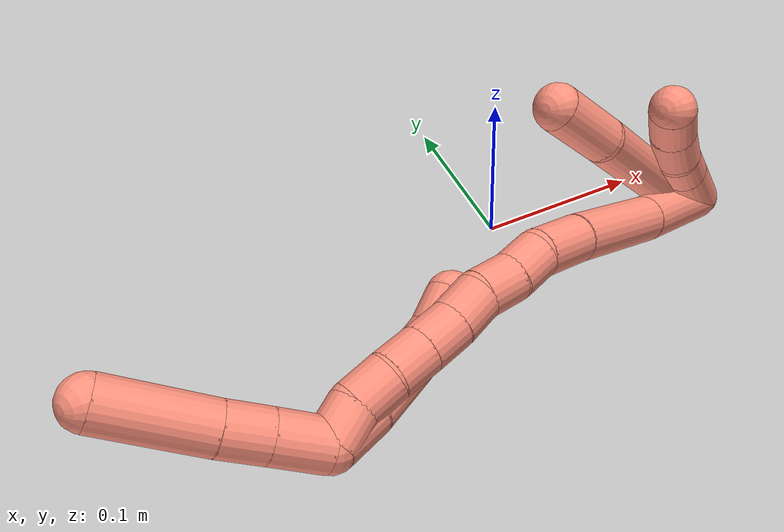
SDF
<sdf version="1.7">
 <world name="default">
  <model name="16">
   <static>0</static>
   <link name="16">
    <collision name="collision-cylinder-e_1_2_8">
     <pose>0.003682 0.006111 0.014849 -0.39041 0.225384 -0.044746</pose>
     <geometry><cylinder><radius>0.0125</radius><length>0.032947</length></cylinder></geometry>
     <surface>
      <friction><ode><mu>1.16</mu><mu2>1.16</mu2><slip1>0</slip1><slip2>0</slip2></ode></friction>
      <contact><ode><kp>1e+06</kp><kd>1</kd><max_vel>0</max_vel><min_depth>0.001</min_depth></ode></contact>
     </surface>
    </collision>
    <visual name="visual-cylinder-e_1_2_8">
     <pose>0.003682 0.006111 0.014849 -0.39041 0.225384 -0.044746</pose>
     <geometry><cylinder><radius>0.0125</radius><length>0.032947</length></cylinder></geometry>
     <material><ambient>1 0.576471 0.494118 1</ambient></material>
    </visual>
    <collision name="collision-cylinder-e_2_8_9">
     <pose>0.024085 0.020276 0.065279 -0.222619 0.429788 -0.048782</pose>
     <geometry><cylinder><radius>0.0125</radius><length>0.080262</length></cylinder></geometry>
     <surface>
      <friction><ode><mu>1.16</mu><mu2>1.16</mu2><slip1>0</slip1><slip2>0</slip2></ode></friction>
      <contact><ode><kp>1e+06</kp><kd>1</kd><max_vel>0</max_vel><min_depth>0.001</min_depth></ode></contact>
     </surface>
    </collision>
    <visual name="visual-cylinder-e_2_8_9">
     <pose>0.024085 0.020276 0.065279 -0.222619 0.429788 -0.048782</pose>
     <geometry><cylinder><radius>0.0125</radius><length>0.080262</length></cylinder></geometry>
     <material><ambient>1 0.576471 0.494118 1</ambient></material>
    </visual>
    <collision name="collision-cylinder-e_3_9_6">
     <pose>0.04749 0.036364 0.115998 -0.487899 0.37184 -0.093567</pose>
     <geometry><cylinder><radius>0.0125</radius><length>0.036791</length></cylinder></geometry>
     <surface>
      <friction><ode><mu>1.16</mu><mu2>1.16</mu2><slip1>0</slip1><slip2>0</slip2></ode></friction>
      <contact><ode><kp>1e+06</kp><kd>1</kd><max_vel>0</max_vel><min_depth>0.001</min_depth></ode></contact>
     </surface>
    </collision>
    <visual name="visual-cylinder-e_3_9_6">
     <pose>0.04749 0.036364 0.115998 -0.487899 0.37184 -0.093567</pose>
     <geometry><cylinder><radius>0.0125</radius><length>0.036791</length></cylinder></geometry>
     <material><ambient>1 0.576471 0.494118 1</ambient></material>
    </visual>
    <collision name="collision-cylinder-e_1_2_10">
     <pose>0.011391 0.002242 0.015737 -0.141518 0.621765 -0.045538</pose>
     <geometry><cylinder><radius>0.0125</radius><length>0.039112</length></cylinder></geometry>
     <surface>
      <friction><ode><mu>1.16</mu><mu2>1.16</mu2><slip1>0</slip1><slip2>0</slip2></ode></friction>
      <contact><ode><kp>1e+06</kp><kd>1</kd><max_vel>0</max_vel><min_depth>0.001</min_depth></ode></contact>
     </surface>
    </collision>
    <visual name="visual-cylinder-e_1_2_10">
     <pose>0.011391 0.002242 0.015737 -0.141518 0.621765 -0.045538</pose>
     <geometry><cylinder><radius>0.0125</radius><length>0.039112</length></cylinder></geometry>
     <material><ambient>1 0.576471 0.494118 1</ambient></material>
    </visual>
    <collision name="collision-cylinder-e_2_10_11">
     <pose>0.028617 0.005628 0.039544 -0.140765 0.621372 -0.045264</pose>
     <geometry><cylinder><radius>0.0125</radius><length>0.020049</length></cylinder></geometry>
     <surface>
      <friction><ode><mu>1.16</mu><mu2>1.16</mu2><slip1>0</slip1><slip2>0</slip2></ode></friction>
      <contact><ode><kp>1e+06</kp><kd>1</kd><max_vel>0</max_vel><min_depth>0.001</min_depth></ode></contact>
     </surface>
    </collision>
    <visual name="visual-cylinder-e_2_10_11">
     <pose>0.028617 0.005628 0.039544 -0.140765 0.621372 -0.045264</pose>
     <geometry><cylinder><radius>0.0125</radius><length>0.020049</length></cylinder></geometry>
     <material><ambient>1 0.576471 0.494118 1</ambient></material>
    </visual>
    <collision name="collision-cylinder-e_3_11_12">
     <pose>0.041784 0.008912 0.054114 -0.318135 0.819772 -0.139181</pose>
     <geometry><cylinder><radius>0.0125</radius><length>0.020057</length></cylinder></geometry>
     <surface>
      <friction><ode><mu>1.16</mu><mu2>1.16</mu2><slip1>0</slip1><slip2>0</slip2></ode></friction>
      <contact><ode><kp>1e+06</kp><kd>1</kd><max_vel>0</max_vel><min_depth>0.001</min_depth></ode></contact>
     </surface>
    </collision>
    <visual name="visual-cylinder-e_3_11_12">
     <pose>0.041784 0.008912 0.054114 -0.318135 0.819772 -0.139181</pose>
     <geometry><cylinder><radius>0.0125</radius><length>0.020057</length></cylinder></geometry>
     <material><ambient>1 0.576471 0.494118 1</ambient></material>
    </visual>
    <collision name="collision-cylinder-e_4_12_5">
     <pose>0.057069 0.012022 0.067229 -0.145531 0.871871 -0.067886</pose>
     <geometry><cylinder><radius>0.0125</radius><length>0.020782</length></cylinder></geometry>
     <surface>
      <friction><ode><mu>1.16</mu><mu2>1.16</mu2><slip1>0</slip1><slip2>0</slip2></ode></friction>
      <contact><ode><kp>1e+06</kp><kd>1</kd><max_vel>0</max_vel><min_depth>0.001</min_depth></ode></contact>
     </surface>
    </collision>
    <visual name="visual-cylinder-e_4_12_5">
     <pose>0.057069 0.012022 0.067229 -0.145531 0.871871 -0.067886</pose>
     <geometry><cylinder><radius>0.0125</radius><length>0.020782</length></cylinder></geometry>
     <material><ambient>1 0.576471 0.494118 1</ambient></material>
    </visual>
    <collision name="collision-cylinder-e_1_2_13">
     <pose>-0.000658 0.000427 0.03015 -0.014162 -0.021816 0.000154</pose>
     <geometry><cylinder><radius>0.0125</radius><length>0.060321</length></cylinder></geometry>
     <surface>
      <friction><ode><mu>1.16</mu><mu2>1.16</mu2><slip1>0</slip1><slip2>0</slip2></ode></friction>
      <contact><ode><kp>1e+06</kp><kd>1</kd><max_vel>0</max_vel><min_depth>0.001</min_depth></ode></contact>
     </surface>
    </collision>
    <visual name="visual-cylinder-e_1_2_13">
     <pose>-0.000658 0.000427 0.03015 -0.014162 -0.021816 0.000154</pose>
     <geometry><cylinder><radius>0.0125</radius><length>0.060321</length></cylinder></geometry>
     <material><ambient>1 0.576471 0.494118 1</ambient></material>
    </visual>
    <collision name="collision-cylinder-e_2_13_14">
     <pose>-0.000382 0.002933 0.093383 -0.06277 0.028171 -0.000885</pose>
     <geometry><cylinder><radius>0.0125</radius><length>0.066322</length></cylinder></geometry>
     <surface>
      <friction><ode><mu>1.16</mu><mu2>1.16</mu2><slip1>0</slip1><slip2>0</slip2></ode></friction>
      <contact><ode><kp>1e+06</kp><kd>1</kd><max_vel>0</max_vel><min_depth>0.001</min_depth></ode></contact>
     </surface>
    </collision>
    <visual name="visual-cylinder-e_2_13_14">
     <pose>-0.000382 0.002933 0.093383 -0.06277 0.028171 -0.000885</pose>
     <geometry><cylinder><radius>0.0125</radius><length>0.066322</length></cylinder></geometry>
     <material><ambient>1 0.576471 0.494118 1</ambient></material>
    </visual>
    <collision name="collision-cylinder-e_3_14_15">
     <pose>-0.000285 0.005776 0.142174 -0.048545 -0.053179 0.001291</pose>
     <geometry><cylinder><radius>0.0125</radius><length>0.031498</length></cylinder></geometry>
     <surface>
      <friction><ode><mu>1.16</mu><mu2>1.16</mu2><slip1>0</slip1><slip2>0</slip2></ode></friction>
      <contact><ode><kp>1e+06</kp><kd>1</kd><max_vel>0</max_vel><min_depth>0.001</min_depth></ode></contact>
     </surface>
    </collision>
    <visual name="visual-cylinder-e_3_14_15">
     <pose>-0.000285 0.005776 0.142174 -0.048545 -0.053179 0.001291</pose>
     <geometry><cylinder><radius>0.0125</radius><length>0.031498</length></cylinder></geometry>
     <material><ambient>1 0.576471 0.494118 1</ambient></material>
    </visual>
    <collision name="collision-cylinder-e_4_15_16">
     <pose>-0.004771 0.005611 0.167261 0.098574 -0.369383 -0.01843</pose>
     <geometry><cylinder><radius>0.0125</radius><length>0.020213</length></cylinder></geometry>
     <surface>
      <friction><ode><mu>1.16</mu><mu2>1.16</mu2><slip1>0</slip1><slip2>0</slip2></ode></friction>
      <contact><ode><kp>1e+06</kp><kd>1</kd><max_vel>0</max_vel><min_depth>0.001</min_depth></ode></contact>
     </surface>
    </collision>
    <visual name="visual-cylinder-e_4_15_16">
     <pose>-0.004771 0.005611 0.167261 0.098574 -0.369383 -0.01843</pose>
     <geometry><cylinder><radius>0.0125</radius><length>0.020213</length></cylinder></geometry>
     <material><ambient>1 0.576471 0.494118 1</ambient></material>
    </visual>
    <collision name="collision-cylinder-e_5_16_17">
     <pose>-0.011285 0.005447 0.186768 -0.075178 -0.275001 0.010407</pose>
     <geometry><cylinder><radius>0.0125</radius><length>0.021106</length></cylinder></geometry>
     <surface>
      <friction><ode><mu>1.16</mu><mu2>1.16</mu2><slip1>0</slip1><slip2>0</slip2></ode></friction>
      <contact><ode><kp>1e+06</kp><kd>1</kd><max_vel>0</max_vel><min_depth>0.001</min_depth></ode></contact>
     </surface>
    </collision>
    <visual name="visual-cylinder-e_5_16_17">
     <pose>-0.011285 0.005447 0.186768 -0.075178 -0.275001 0.010407</pose>
     <geometry><cylinder><radius>0.0125</radius><length>0.021106</length></cylinder></geometry>
     <material><ambient>1 0.576471 0.494118 1</ambient></material>
    </visual>
    <collision name="collision-cylinder-e_6_17_18">
     <pose>-0.018626 0.004728 0.205788 0.165127 -0.460757 -0.038813</pose>
     <geometry><cylinder><radius>0.0125</radius><length>0.020129</length></cylinder></geometry>
     <surface>
      <friction><ode><mu>1.16</mu><mu2>1.16</mu2><slip1>0</slip1><slip2>0</slip2></ode></friction>
      <contact><ode><kp>1e+06</kp><kd>1</kd><max_vel>0</max_vel><min_depth>0.001</min_depth></ode></contact>
     </surface>
    </collision>
    <visual name="visual-cylinder-e_6_17_18">
     <pose>-0.018626 0.004728 0.205788 0.165127 -0.460757 -0.038813</pose>
     <geometry><cylinder><radius>0.0125</radius><length>0.020129</length></cylinder></geometry>
     <material><ambient>1 0.576471 0.494118 1</ambient></material>
    </visual>
    <collision name="collision-cylinder-e_7_18_19">
     <pose>-0.026913 0.002692 0.224081 0.058849 -0.384583 -0.011461</pose>
     <geometry><cylinder><radius>0.0125</radius><length>0.020319</length></cylinder></geometry>
     <surface>
      <friction><ode><mu>1.16</mu><mu2>1.16</mu2><slip1>0</slip1><slip2>0</slip2></ode></friction>
      <contact><ode><kp>1e+06</kp><kd>1</kd><max_vel>0</max_vel><min_depth>0.001</min_depth></ode></contact>
     </surface>
    </collision>
    <visual name="visual-cylinder-e_7_18_19">
     <pose>-0.026913 0.002692 0.224081 0.058849 -0.384583 -0.011461</pose>
     <geometry><cylinder><radius>0.0125</radius><length>0.020319</length></cylinder></geometry>
     <material><ambient>1 0.576471 0.494118 1</ambient></material>
    </visual>
    <collision name="collision-cylinder-e_8_19_20">
     <pose>-0.03449 0.001762 0.242772 0.040413 -0.384856 -0.007875</pose>
     <geometry><cylinder><radius>0.0125</radius><length>0.020062</length></cylinder></geometry>
     <surface>
      <friction><ode><mu>1.16</mu><mu2>1.16</mu2><slip1>0</slip1><slip2>0</slip2></ode></friction>
      <contact><ode><kp>1e+06</kp><kd>1</kd><max_vel>0</max_vel><min_depth>0.001</min_depth></ode></contact>
     </surface>
    </collision>
    <visual name="visual-cylinder-e_8_19_20">
     <pose>-0.03449 0.001762 0.242772 0.040413 -0.384856 -0.007875</pose>
     <geometry><cylinder><radius>0.0125</radius><length>0.020062</length></cylinder></geometry>
     <material><ambient>1 0.576471 0.494118 1</ambient></material>
    </visual>
    <collision name="collision-cylinder-e_9_20_21">
     <pose>-0.043441 0.001317 0.260613 0.008197 -0.545062 -0.002291</pose>
     <geometry><cylinder><radius>0.0125</radius><length>0.020002</length></cylinder></geometry>
     <surface>
      <friction><ode><mu>1.16</mu><mu2>1.16</mu2><slip1>0</slip1><slip2>0</slip2></ode></friction>
      <contact><ode><kp>1e+06</kp><kd>1</kd><max_vel>0</max_vel><min_depth>0.001</min_depth></ode></contact>
     </surface>
    </collision>
    <visual name="visual-cylinder-e_9_20_21">
     <pose>-0.043441 0.001317 0.260613 0.008197 -0.545062 -0.002291</pose>
     <geometry><cylinder><radius>0.0125</radius><length>0.020002</length></cylinder></geometry>
     <material><ambient>1 0.576471 0.494118 1</ambient></material>
    </visual>
    <collision name="collision-cylinder-e_10_21_1">
     <pose>-0.054228 -0.001813 0.27688 0.377541 -0.5937 -0.116744</pose>
     <geometry><cylinder><radius>0.0125</radius><length>0.020029</length></cylinder></geometry>
     <surface>
      <friction><ode><mu>1.16</mu><mu2>1.16</mu2><slip1>0</slip1><slip2>0</slip2></ode></friction>
      <contact><ode><kp>1e+06</kp><kd>1</kd><max_vel>0</max_vel><min_depth>0.001</min_depth></ode></contact>
     </surface>
    </collision>
    <visual name="visual-cylinder-e_10_21_1">
     <pose>-0.054228 -0.001813 0.27688 0.377541 -0.5937 -0.116744</pose>
     <geometry><cylinder><radius>0.0125</radius><length>0.020029</length></cylinder></geometry>
     <material><ambient>1 0.576471 0.494118 1</ambient></material>
    </visual>
    <collision name="collision-cylinder-e_1_1_22">
     <pose>-0.059323 0.003321 0.29513 -0.661121 0.038003 -0.013042</pose>
     <geometry><cylinder><radius>0.0125</radius><length>0.026709</length></cylinder></geometry>
     <surface>
      <friction><ode><mu>1.16</mu><mu2>1.16</mu2><slip1>0</slip1><slip2>0</slip2></ode></friction>
      <contact><ode><kp>1e+06</kp><kd>1</kd><max_vel>0</max_vel><min_depth>0.001</min_depth></ode></contact>
     </surface>
    </collision>
    <visual name="visual-cylinder-e_1_1_22">
     <pose>-0.059323 0.003321 0.29513 -0.661121 0.038003 -0.013042</pose>
     <geometry><cylinder><radius>0.0125</radius><length>0.026709</length></cylinder></geometry>
     <material><ambient>1 0.576471 0.494118 1</ambient></material>
    </visual>
    <collision name="collision-cylinder-e_2_22_23">
     <pose>-0.058355 0.018051 0.314312 -0.647141 0.042506 -0.014257</pose>
     <geometry><cylinder><radius>0.0125</radius><length>0.021703</length></cylinder></geometry>
     <surface>
      <friction><ode><mu>1.16</mu><mu2>1.16</mu2><slip1>0</slip1><slip2>0</slip2></ode></friction>
      <contact><ode><kp>1e+06</kp><kd>1</kd><max_vel>0</max_vel><min_depth>0.001</min_depth></ode></contact>
     </surface>
    </collision>
    <visual name="visual-cylinder-e_2_22_23">
     <pose>-0.058355 0.018051 0.314312 -0.647141 0.042506 -0.014257</pose>
     <geometry><cylinder><radius>0.0125</radius><length>0.021703</length></cylinder></geometry>
     <material><ambient>1 0.576471 0.494118 1</ambient></material>
    </visual>
    <collision name="collision-cylinder-e_3_23_4">
     <pose>-0.056173 0.040911 0.342859 -0.687052 0.066776 -0.023894</pose>
     <geometry><cylinder><radius>0.0125</radius><length>0.051588</length></cylinder></geometry>
     <surface>
      <friction><ode><mu>1.16</mu><mu2>1.16</mu2><slip1>0</slip1><slip2>0</slip2></ode></friction>
      <contact><ode><kp>1e+06</kp><kd>1</kd><max_vel>0</max_vel><min_depth>0.001</min_depth></ode></contact>
     </surface>
    </collision>
    <visual name="visual-cylinder-e_3_23_4">
     <pose>-0.056173 0.040911 0.342859 -0.687052 0.066776 -0.023894</pose>
     <geometry><cylinder><radius>0.0125</radius><length>0.051588</length></cylinder></geometry>
     <material><ambient>1 0.576471 0.494118 1</ambient></material>
    </visual>
    <collision name="collision-cylinder-e_1_1_24">
     <pose>-0.057388 -0.00288 0.272203 -2.98211 0.192216 -1.75733</pose>
     <geometry><cylinder><radius>0.0125</radius><length>0.025576</length></cylinder></geometry>
     <surface>
      <friction><ode><mu>1.16</mu><mu2>1.16</mu2><slip1>0</slip1><slip2>0</slip2></ode></friction>
      <contact><ode><kp>1e+06</kp><kd>1</kd><max_vel>0</max_vel><min_depth>0.001</min_depth></ode></contact>
     </surface>
    </collision>
    <visual name="visual-cylinder-e_1_1_24">
     <pose>-0.057388 -0.00288 0.272203 -2.98211 0.192216 -1.75733</pose>
     <geometry><cylinder><radius>0.0125</radius><length>0.025576</length></cylinder></geometry>
     <material><ambient>1 0.576471 0.494118 1</ambient></material>
    </visual>
    <collision name="collision-cylinder-e_2_24_25">
     <pose>-0.051392 0.00341 0.243822 -2.87907 0.211397 -1.3539</pose>
     <geometry><cylinder><radius>0.0125</radius><length>0.033866</length></cylinder></geometry>
     <surface>
      <friction><ode><mu>1.16</mu><mu2>1.16</mu2><slip1>0</slip1><slip2>0</slip2></ode></friction>
      <contact><ode><kp>1e+06</kp><kd>1</kd><max_vel>0</max_vel><min_depth>0.001</min_depth></ode></contact>
     </surface>
    </collision>
    <visual name="visual-cylinder-e_2_24_25">
     <pose>-0.051392 0.00341 0.243822 -2.87907 0.211397 -1.3539</pose>
     <geometry><cylinder><radius>0.0125</radius><length>0.033866</length></cylinder></geometry>
     <material><ambient>1 0.576471 0.494118 1</ambient></material>
    </visual>
    <collision name="collision-cylinder-e_3_25_26">
     <pose>-0.042595 0.009571 0.21929 -2.92671 0.540177 -2.3986</pose>
     <geometry><cylinder><radius>0.0125</radius><length>0.020392</length></cylinder></geometry>
     <surface>
      <friction><ode><mu>1.16</mu><mu2>1.16</mu2><slip1>0</slip1><slip2>0</slip2></ode></friction>
      <contact><ode><kp>1e+06</kp><kd>1</kd><max_vel>0</max_vel><min_depth>0.001</min_depth></ode></contact>
     </surface>
    </collision>
    <visual name="visual-cylinder-e_3_25_26">
     <pose>-0.042595 0.009571 0.21929 -2.92671 0.540177 -2.3986</pose>
     <geometry><cylinder><radius>0.0125</radius><length>0.020392</length></cylinder></geometry>
     <material><ambient>1 0.576471 0.494118 1</ambient></material>
    </visual>
    <collision name="collision-cylinder-e_4_26_3">
     <pose>-0.031806 0.015365 0.203298 -2.65619 0.582405 -1.76077</pose>
     <geometry><cylinder><radius>0.0125</radius><length>0.020167</length></cylinder></geometry>
     <surface>
      <friction><ode><mu>1.16</mu><mu2>1.16</mu2><slip1>0</slip1><slip2>0</slip2></ode></friction>
      <contact><ode><kp>1e+06</kp><kd>1</kd><max_vel>0</max_vel><min_depth>0.001</min_depth></ode></contact>
     </surface>
    </collision>
    <visual name="visual-cylinder-e_4_26_3">
     <pose>-0.031806 0.015365 0.203298 -2.65619 0.582405 -1.76077</pose>
     <geometry><cylinder><radius>0.0125</radius><length>0.020167</length></cylinder></geometry>
     <material><ambient>1 0.576471 0.494118 1</ambient></material>
    </visual>
    <collision name="collision-sphere-3">
     <pose>-0.026259 0.019294 0.19585 0 -0 0</pose>
     <geometry><sphere><radius>0.0125</radius></sphere></geometry>
     <surface>
      <friction><ode><mu>1.16</mu><mu2>1.16</mu2><slip1>0</slip1><slip2>0</slip2></ode></friction>
      <contact><ode><kp>1e+06</kp><kd>1</kd><max_vel>0</max_vel><min_depth>0.001</min_depth></ode></contact>
     </surface>
    </collision>
    <visual name="visual-sphere-3">
     <pose>-0.026259 0.019294 0.19585 0 -0 0</pose>
     <geometry><sphere><radius>0.0125</radius></sphere></geometry>
     <material><ambient>1 0.576471 0.494118 1</ambient></material>
    </visual>
    <collision name="collision-sphere-26">
     <pose>-0.037352 0.011436 0.210747 0 -0 0</pose>
     <geometry><sphere><radius>0.0125</radius></sphere></geometry>
     <surface>
      <friction><ode><mu>1.16</mu><mu2>1.16</mu2><slip1>0</slip1><slip2>0</slip2></ode></friction>
      <contact><ode><kp>1e+06</kp><kd>1</kd><max_vel>0</max_vel><min_depth>0.001</min_depth></ode></contact>
     </surface>
    </collision>
    <visual name="visual-sphere-26">
     <pose>-0.037352 0.011436 0.210747 0 -0 0</pose>
     <geometry><sphere><radius>0.0125</radius></sphere></geometry>
     <material><ambient>1 0.576471 0.494118 1</ambient></material>
    </visual>
    <collision name="collision-sphere-25">
     <pose>-0.047839 0.007707 0.227833 0 -0 0</pose>
     <geometry><sphere><radius>0.0125</radius></sphere></geometry>
     <surface>
      <friction><ode><mu>1.16</mu><mu2>1.16</mu2><slip1>0</slip1><slip2>0</slip2></ode></friction>
      <contact><ode><kp>1e+06</kp><kd>1</kd><max_vel>0</max_vel><min_depth>0.001</min_depth></ode></contact>
     </surface>
    </collision>
    <visual name="visual-sphere-25">
     <pose>-0.047839 0.007707 0.227833 0 -0 0</pose>
     <geometry><sphere><radius>0.0125</radius></sphere></geometry>
     <material><ambient>1 0.576471 0.494118 1</ambient></material>
    </visual>
    <collision name="collision-sphere-24">
     <pose>-0.054945 -0.000886 0.25981 0 -0 0</pose>
     <geometry><sphere><radius>0.0125</radius></sphere></geometry>
     <surface>
      <friction><ode><mu>1.16</mu><mu2>1.16</mu2><slip1>0</slip1><slip2>0</slip2></ode></friction>
      <contact><ode><kp>1e+06</kp><kd>1</kd><max_vel>0</max_vel><min_depth>0.001</min_depth></ode></contact>
     </surface>
    </collision>
    <visual name="visual-sphere-24">
     <pose>-0.054945 -0.000886 0.25981 0 -0 0</pose>
     <geometry><sphere><radius>0.0125</radius></sphere></geometry>
     <material><ambient>1 0.576471 0.494118 1</ambient></material>
    </visual>
    <collision name="collision-sphere-4">
     <pose>-0.054451 0.057235 0.362757 0 -0 0</pose>
     <geometry><sphere><radius>0.0125</radius></sphere></geometry>
     <surface>
      <friction><ode><mu>1.16</mu><mu2>1.16</mu2><slip1>0</slip1><slip2>0</slip2></ode></friction>
      <contact><ode><kp>1e+06</kp><kd>1</kd><max_vel>0</max_vel><min_depth>0.001</min_depth></ode></contact>
     </surface>
    </collision>
    <visual name="visual-sphere-4">
     <pose>-0.054451 0.057235 0.362757 0 -0 0</pose>
     <geometry><sphere><radius>0.0125</radius></sphere></geometry>
     <material><ambient>1 0.576471 0.494118 1</ambient></material>
    </visual>
    <collision name="collision-sphere-23">
     <pose>-0.057894 0.024587 0.322962 0 -0 0</pose>
     <geometry><sphere><radius>0.0125</radius></sphere></geometry>
     <surface>
      <friction><ode><mu>1.16</mu><mu2>1.16</mu2><slip1>0</slip1><slip2>0</slip2></ode></friction>
      <contact><ode><kp>1e+06</kp><kd>1</kd><max_vel>0</max_vel><min_depth>0.001</min_depth></ode></contact>
     </surface>
    </collision>
    <visual name="visual-sphere-23">
     <pose>-0.057894 0.024587 0.322962 0 -0 0</pose>
     <geometry><sphere><radius>0.0125</radius></sphere></geometry>
     <material><ambient>1 0.576471 0.494118 1</ambient></material>
    </visual>
    <collision name="collision-sphere-22">
     <pose>-0.058816 0.011514 0.305663 0 -0 0</pose>
     <geometry><sphere><radius>0.0125</radius></sphere></geometry>
     <surface>
      <friction><ode><mu>1.16</mu><mu2>1.16</mu2><slip1>0</slip1><slip2>0</slip2></ode></friction>
      <contact><ode><kp>1e+06</kp><kd>1</kd><max_vel>0</max_vel><min_depth>0.001</min_depth></ode></contact>
     </surface>
    </collision>
    <visual name="visual-sphere-22">
     <pose>-0.058816 0.011514 0.305663 0 -0 0</pose>
     <geometry><sphere><radius>0.0125</radius></sphere></geometry>
     <material><ambient>1 0.576471 0.494118 1</ambient></material>
    </visual>
    <collision name="collision-sphere-1">
     <pose>-0.059831 -0.004873 0.284597 0 -0 0</pose>
     <geometry><sphere><radius>0.0125</radius></sphere></geometry>
     <surface>
      <friction><ode><mu>1.16</mu><mu2>1.16</mu2><slip1>0</slip1><slip2>0</slip2></ode></friction>
      <contact><ode><kp>1e+06</kp><kd>1</kd><max_vel>0</max_vel><min_depth>0.001</min_depth></ode></contact>
     </surface>
    </collision>
    <visual name="visual-sphere-1">
     <pose>-0.059831 -0.004873 0.284597 0 -0 0</pose>
     <geometry><sphere><radius>0.0125</radius></sphere></geometry>
     <material><ambient>1 0.576471 0.494118 1</ambient></material>
    </visual>
    <collision name="collision-sphere-21">
     <pose>-0.048626 0.001247 0.269164 0 -0 0</pose>
     <geometry><sphere><radius>0.0125</radius></sphere></geometry>
     <surface>
      <friction><ode><mu>1.16</mu><mu2>1.16</mu2><slip1>0</slip1><slip2>0</slip2></ode></friction>
      <contact><ode><kp>1e+06</kp><kd>1</kd><max_vel>0</max_vel><min_depth>0.001</min_depth></ode></contact>
     </surface>
    </collision>
    <visual name="visual-sphere-21">
     <pose>-0.048626 0.001247 0.269164 0 -0 0</pose>
     <geometry><sphere><radius>0.0125</radius></sphere></geometry>
     <material><ambient>1 0.576471 0.494118 1</ambient></material>
    </visual>
    <collision name="collision-sphere-11">
     <pose>0.034453 0.006771 0.047614 0 -0 0</pose>
     <geometry><sphere><radius>0.0125</radius></sphere></geometry>
     <surface>
      <friction><ode><mu>1.16</mu><mu2>1.16</mu2><slip1>0</slip1><slip2>0</slip2></ode></friction>
      <contact><ode><kp>1e+06</kp><kd>1</kd><max_vel>0</max_vel><min_depth>0.001</min_depth></ode></contact>
     </surface>
    </collision>
    <visual name="visual-sphere-11">
     <pose>0.034453 0.006771 0.047614 0 -0 0</pose>
     <geometry><sphere><radius>0.0125</radius></sphere></geometry>
     <material><ambient>1 0.576471 0.494118 1</ambient></material>
    </visual>
    <collision name="collision-sphere-10">
     <pose>0.022781 0.004484 0.031474 0 -0 0</pose>
     <geometry><sphere><radius>0.0125</radius></sphere></geometry>
     <surface>
      <friction><ode><mu>1.16</mu><mu2>1.16</mu2><slip1>0</slip1><slip2>0</slip2></ode></friction>
      <contact><ode><kp>1e+06</kp><kd>1</kd><max_vel>0</max_vel><min_depth>0.001</min_depth></ode></contact>
     </surface>
    </collision>
    <visual name="visual-sphere-10">
     <pose>0.022781 0.004484 0.031474 0 -0 0</pose>
     <geometry><sphere><radius>0.0125</radius></sphere></geometry>
     <material><ambient>1 0.576471 0.494118 1</ambient></material>
    </visual>
    <collision name="collision-sphere-6">
     <pose>0.054174 0.044398 0.131137 0 -0 0</pose>
     <geometry><sphere><radius>0.0125</radius></sphere></geometry>
     <surface>
      <friction><ode><mu>1.16</mu><mu2>1.16</mu2><slip1>0</slip1><slip2>0</slip2></ode></friction>
      <contact><ode><kp>1e+06</kp><kd>1</kd><max_vel>0</max_vel><min_depth>0.001</min_depth></ode></contact>
     </surface>
    </collision>
    <visual name="visual-sphere-6">
     <pose>0.054174 0.044398 0.131137 0 -0 0</pose>
     <geometry><sphere><radius>0.0125</radius></sphere></geometry>
     <material><ambient>1 0.576471 0.494118 1</ambient></material>
    </visual>
    <collision name="collision-sphere-9">
     <pose>0.040806 0.028331 0.100859 0 -0 0</pose>
     <geometry><sphere><radius>0.0125</radius></sphere></geometry>
     <surface>
      <friction><ode><mu>1.16</mu><mu2>1.16</mu2><slip1>0</slip1><slip2>0</slip2></ode></friction>
      <contact><ode><kp>1e+06</kp><kd>1</kd><max_vel>0</max_vel><min_depth>0.001</min_depth></ode></contact>
     </surface>
    </collision>
    <visual name="visual-sphere-9">
     <pose>0.040806 0.028331 0.100859 0 -0 0</pose>
     <geometry><sphere><radius>0.0125</radius></sphere></geometry>
     <material><ambient>1 0.576471 0.494118 1</ambient></material>
    </visual>
    <collision name="collision-sphere-2">
     <geometry><sphere><radius>0.0125</radius></sphere></geometry>
     <surface>
      <friction><ode><mu>1.16</mu><mu2>1.16</mu2><slip1>0</slip1><slip2>0</slip2></ode></friction>
      <contact><ode><kp>1e+06</kp><kd>1</kd><max_vel>0</max_vel><min_depth>0.001</min_depth></ode></contact>
     </surface>
    </collision>
    <visual name="visual-sphere-2">
     <geometry><sphere><radius>0.0125</radius></sphere></geometry>
     <material><ambient>1 0.576471 0.494118 1</ambient></material>
    </visual>
    <collision name="collision-sphere-19">
     <pose>-0.030724 0.002138 0.233482 0 -0 0</pose>
     <geometry><sphere><radius>0.0125</radius></sphere></geometry>
     <surface>
      <friction><ode><mu>1.16</mu><mu2>1.16</mu2><slip1>0</slip1><slip2>0</slip2></ode></friction>
      <contact><ode><kp>1e+06</kp><kd>1</kd><max_vel>0</max_vel><min_depth>0.001</min_depth></ode></contact>
     </surface>
    </collision>
    <visual name="visual-sphere-19">
     <pose>-0.030724 0.002138 0.233482 0 -0 0</pose>
     <geometry><sphere><radius>0.0125</radius></sphere></geometry>
     <material><ambient>1 0.576471 0.494118 1</ambient></material>
    </visual>
    <collision name="collision-sphere-8">
     <pose>0.007363 0.012222 0.029698 0 -0 0</pose>
     <geometry><sphere><radius>0.0125</radius></sphere></geometry>
     <surface>
      <friction><ode><mu>1.16</mu><mu2>1.16</mu2><slip1>0</slip1><slip2>0</slip2></ode></friction>
      <contact><ode><kp>1e+06</kp><kd>1</kd><max_vel>0</max_vel><min_depth>0.001</min_depth></ode></contact>
     </surface>
    </collision>
    <visual name="visual-sphere-8">
     <pose>0.007363 0.012222 0.029698 0 -0 0</pose>
     <geometry><sphere><radius>0.0125</radius></sphere></geometry>
     <material><ambient>1 0.576471 0.494118 1</ambient></material>
    </visual>
    <collision name="collision-sphere-12">
     <pose>0.049115 0.011052 0.060614 0 -0 0</pose>
     <geometry><sphere><radius>0.0125</radius></sphere></geometry>
     <surface>
      <friction><ode><mu>1.16</mu><mu2>1.16</mu2><slip1>0</slip1><slip2>0</slip2></ode></friction>
      <contact><ode><kp>1e+06</kp><kd>1</kd><max_vel>0</max_vel><min_depth>0.001</min_depth></ode></contact>
     </surface>
    </collision>
    <visual name="visual-sphere-12">
     <pose>0.049115 0.011052 0.060614 0 -0 0</pose>
     <geometry><sphere><radius>0.0125</radius></sphere></geometry>
     <material><ambient>1 0.576471 0.494118 1</ambient></material>
    </visual>
    <collision name="collision-sphere-5">
     <pose>0.065024 0.012991 0.073844 0 -0 0</pose>
     <geometry><sphere><radius>0.0125</radius></sphere></geometry>
     <surface>
      <friction><ode><mu>1.16</mu><mu2>1.16</mu2><slip1>0</slip1><slip2>0</slip2></ode></friction>
      <contact><ode><kp>1e+06</kp><kd>1</kd><max_vel>0</max_vel><min_depth>0.001</min_depth></ode></contact>
     </surface>
    </collision>
    <visual name="visual-sphere-5">
     <pose>0.065024 0.012991 0.073844 0 -0 0</pose>
     <geometry><sphere><radius>0.0125</radius></sphere></geometry>
     <material><ambient>1 0.576471 0.494118 1</ambient></material>
    </visual>
    <collision name="collision-sphere-13">
     <pose>-0.001316 0.000854 0.0603 0 -0 0</pose>
     <geometry><sphere><radius>0.0125</radius></sphere></geometry>
     <surface>
      <friction><ode><mu>1.16</mu><mu2>1.16</mu2><slip1>0</slip1><slip2>0</slip2></ode></friction>
      <contact><ode><kp>1e+06</kp><kd>1</kd><max_vel>0</max_vel><min_depth>0.001</min_depth></ode></contact>
     </surface>
    </collision>
    <visual name="visual-sphere-13">
     <pose>-0.001316 0.000854 0.0603 0 -0 0</pose>
     <geometry><sphere><radius>0.0125</radius></sphere></geometry>
     <material><ambient>1 0.576471 0.494118 1</ambient></material>
    </visual>
    <collision name="collision-sphere-14">
     <pose>0.000552 0.005013 0.126466 0 -0 0</pose>
     <geometry><sphere><radius>0.0125</radius></sphere></geometry>
     <surface>
      <friction><ode><mu>1.16</mu><mu2>1.16</mu2><slip1>0</slip1><slip2>0</slip2></ode></friction>
      <contact><ode><kp>1e+06</kp><kd>1</kd><max_vel>0</max_vel><min_depth>0.001</min_depth></ode></contact>
     </surface>
    </collision>
    <visual name="visual-sphere-14">
     <pose>0.000552 0.005013 0.126466 0 -0 0</pose>
     <geometry><sphere><radius>0.0125</radius></sphere></geometry>
     <material><ambient>1 0.576471 0.494118 1</ambient></material>
    </visual>
    <collision name="collision-sphere-15">
     <pose>-0.001122 0.006539 0.157882 0 -0 0</pose>
     <geometry><sphere><radius>0.0125</radius></sphere></geometry>
     <surface>
      <friction><ode><mu>1.16</mu><mu2>1.16</mu2><slip1>0</slip1><slip2>0</slip2></ode></friction>
      <contact><ode><kp>1e+06</kp><kd>1</kd><max_vel>0</max_vel><min_depth>0.001</min_depth></ode></contact>
     </surface>
    </collision>
    <visual name="visual-sphere-15">
     <pose>-0.001122 0.006539 0.157882 0 -0 0</pose>
     <geometry><sphere><radius>0.0125</radius></sphere></geometry>
     <material><ambient>1 0.576471 0.494118 1</ambient></material>
    </visual>
    <collision name="collision-sphere-16">
     <pose>-0.00842 0.004684 0.17664 0 -0 0</pose>
     <geometry><sphere><radius>0.0125</radius></sphere></geometry>
     <surface>
      <friction><ode><mu>1.16</mu><mu2>1.16</mu2><slip1>0</slip1><slip2>0</slip2></ode></friction>
      <contact><ode><kp>1e+06</kp><kd>1</kd><max_vel>0</max_vel><min_depth>0.001</min_depth></ode></contact>
     </surface>
    </collision>
    <visual name="visual-sphere-16">
     <pose>-0.00842 0.004684 0.17664 0 -0 0</pose>
     <geometry><sphere><radius>0.0125</radius></sphere></geometry>
     <material><ambient>1 0.576471 0.494118 1</ambient></material>
    </visual>
    <collision name="collision-sphere-17">
     <pose>-0.014151 0.00621 0.196896 0 -0 0</pose>
     <geometry><sphere><radius>0.0125</radius></sphere></geometry>
     <surface>
      <friction><ode><mu>1.16</mu><mu2>1.16</mu2><slip1>0</slip1><slip2>0</slip2></ode></friction>
      <contact><ode><kp>1e+06</kp><kd>1</kd><max_vel>0</max_vel><min_depth>0.001</min_depth></ode></contact>
     </surface>
    </collision>
    <visual name="visual-sphere-17">
     <pose>-0.014151 0.00621 0.196896 0 -0 0</pose>
     <geometry><sphere><radius>0.0125</radius></sphere></geometry>
     <material><ambient>1 0.576471 0.494118 1</ambient></material>
    </visual>
    <collision name="collision-sphere-18">
     <pose>-0.023101 0.003246 0.214681 0 -0 0</pose>
     <geometry><sphere><radius>0.0125</radius></sphere></geometry>
     <surface>
      <friction><ode><mu>1.16</mu><mu2>1.16</mu2><slip1>0</slip1><slip2>0</slip2></ode></friction>
      <contact><ode><kp>1e+06</kp><kd>1</kd><max_vel>0</max_vel><min_depth>0.001</min_depth></ode></contact>
     </surface>
    </collision>
    <visual name="visual-sphere-18">
     <pose>-0.023101 0.003246 0.214681 0 -0 0</pose>
     <geometry><sphere><radius>0.0125</radius></sphere></geometry>
     <material><ambient>1 0.576471 0.494118 1</ambient></material>
    </visual>
    <collision name="collision-sphere-20">
     <pose>-0.038256 0.001387 0.252062 0 -0 0</pose>
     <geometry><sphere><radius>0.0125</radius></sphere></geometry>
     <surface>
      <friction><ode><mu>1.16</mu><mu2>1.16</mu2><slip1>0</slip1><slip2>0</slip2></ode></friction>
      <contact><ode><kp>1e+06</kp><kd>1</kd><max_vel>0</max_vel><min_depth>0.001</min_depth></ode></contact>
     </surface>
    </collision>
    <visual name="visual-sphere-20">
     <pose>-0.038256 0.001387 0.252062 0 -0 0</pose>
     <geometry><sphere><radius>0.0125</radius></sphere></geometry>
     <material><ambient>1 0.576471 0.494118 1</ambient></material>
    </visual>
    <inertial>
     <pose>-0.010132 0.010319 0.152275 0 -0 0</pose>
     <mass>0.75</mass>
     <inertia>
      <ixx>0.000133</ixx>
      <ixy>0</ixy>
      <ixz>0</ixz>
      <iyy>0.00014</iyy>
      <iyz>0</iyz>
      <izz>-2.1e-05</izz>
     </inertia>
    </inertial>
   </link>
   <pose>0.095541 -0.07564 0.052661 0.334881 -1.14549 0.004864</pose>
  </model>
 </world>
</sdf>
